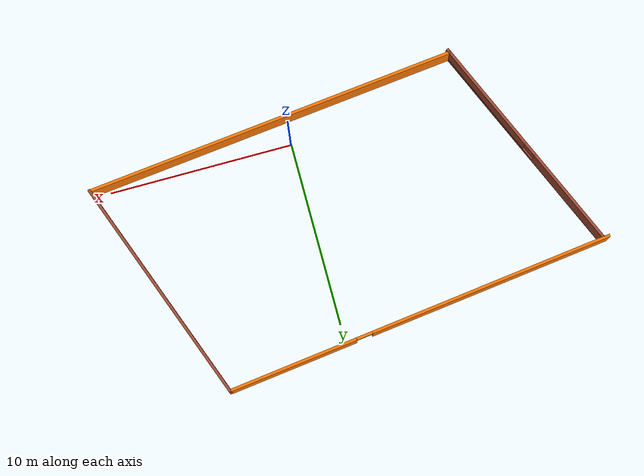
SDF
<?xml version='1.0'?>
<sdf version='1.6'>
  <model name='building'>
    <pose frame=''>-1.9317 4.7603 0 0 -0 0</pose>
    <link name='Wall_0'>
      <pose frame=''>-9.99203 -1.31689 0 0 0 -1.14916</pose>
      <visual name='Wall_0_Visual_0'>
        <pose frame=''>-3.64378 0 1.25 0 -0 0</pose>
        <geometry>
          <box>
            <size>5.72388 0.15 2.5</size>
          </box>
        </geometry>
        <material>
          <script>
            <uri>file://media/materials/scripts/gazebo.material</uri>
            <name>Gazebo/Bricks</name>
          </script>
          <ambient>1 1 1 1</ambient>
        </material>
        <meta>
          <layer>0</layer>
        </meta>
      </visual>
      <collision name='Wall_0_Collision_0'>
        <geometry>
          <box>
            <size>5.72388 0.15 2.5</size>
          </box>
        </geometry>
        <pose frame=''>-3.64378 0 1.25 0 -0 0</pose>
      </collision>
      <visual name='Wall_0_Visual_1'>
        <pose frame=''>2.86194 0 0.25 0 -0 0</pose>
        <geometry>
          <box>
            <size>7.28755 0.15 0.5</size>
          </box>
        </geometry>
        <material>
          <script>
            <uri>file://media/materials/scripts/gazebo.material</uri>
            <name>Gazebo/Bricks</name>
          </script>
          <ambient>1 1 1 1</ambient>
        </material>
        <meta>
          <layer>0</layer>
        </meta>
      </visual>
      <collision name='Wall_0_Collision_1'>
        <geometry>
          <box>
            <size>7.28755 0.15 0.5</size>
          </box>
        </geometry>
        <pose frame=''>2.86194 0 0.25 0 -0 0</pose>
      </collision>
      <visual name='Wall_0_Visual_2'>
        <pose frame=''>3.26194 0 1.5 0 -0 0</pose>
        <geometry>
          <box>
            <size>6.48755 0.15 2</size>
          </box>
        </geometry>
        <material>
          <script>
            <uri>file://media/materials/scripts/gazebo.material</uri>
            <name>Gazebo/Bricks</name>
          </script>
          <ambient>1 1 1 1</ambient>
        </material>
        <meta>
          <layer>0</layer>
        </meta>
      </visual>
      <collision name='Wall_0_Collision_2'>
        <geometry>
          <box>
            <size>6.48755 0.15 2</size>
          </box>
        </geometry>
        <pose frame=''>3.26194 0 1.5 0 -0 0</pose>
      </collision>
      <visual name='Wall_0_Visual_3'>
        <pose frame=''>-0.381833 0 1.9 0 -0 0</pose>
        <geometry>
          <box>
            <size>0.8 0.15 1.2</size>
          </box>
        </geometry>
        <material>
          <script>
            <uri>file://media/materials/scripts/gazebo.material</uri>
            <name>Gazebo/Bricks</name>
          </script>
          <ambient>1 1 1 1</ambient>
        </material>
        <meta>
          <layer>0</layer>
        </meta>
      </visual>
      <collision name='Wall_0_Collision_3'>
        <geometry>
          <box>
            <size>0.8 0.15 1.2</size>
          </box>
        </geometry>
        <pose frame=''>-0.381833 0 1.9 0 -0 0</pose>
      </collision>
    </link>
    <link name='Wall_1'>
      <collision name='Wall_1_Collision'>
        <geometry>
          <box>
            <size>20.3706 0.15 2.5</size>
          </box>
        </geometry>
        <pose frame=''>0 0 1.25 0 -0 0</pose>
      </collision>
      <visual name='Wall_1_Visual'>
        <pose frame=''>0 0 1.25 0 -0 0</pose>
        <geometry>
          <box>
            <size>20.3706 0.15 2.5</size>
          </box>
        </geometry>
        <material>
          <script>
            <uri>file://media/materials/scripts/gazebo.material</uri>
            <name>Gazebo/Grey</name>
          </script>
          <ambient>0.996078 0.47451 0.0196078 1</ambient>
        </material>
        <meta>
          <layer>0</layer>
        </meta>
      </visual>
      <pose frame=''>2.69396 -5.98411 0 0 -0 0.105378</pose>
    </link>
    <link name='Wall_2'>
      <collision name='Wall_2_Collision'>
        <geometry>
          <box>
            <size>13.0387 0.15 2.5</size>
          </box>
        </geometry>
        <pose frame=''>0 0 1.25 0 -0 0</pose>
      </collision>
      <visual name='Wall_2_Visual'>
        <pose frame=''>0 0 1.25 0 -0 0</pose>
        <geometry>
          <box>
            <size>13.0387 0.15 2.5</size>
          </box>
        </geometry>
        <material>
          <script>
            <uri>file://media/materials/scripts/gazebo.material</uri>
            <name>Gazebo/Bricks</name>
          </script>
          <ambient>1 1 1 1</ambient>
        </material>
        <meta>
          <layer>0</layer>
        </meta>
      </visual>
      <pose frame=''>10.6763 1.13335 0 0 -0 1.92063</pose>
    </link>
    <link name='Wall_3'>
      <pose frame=''>-2.28344 5.86901 0 0 0 -3.01802</pose>
      <visual name='Wall_3_Visual_0'>
        <pose frame=''>-7.20915 0 1.25 0 -0 0</pose>
        <geometry>
          <box>
            <size>7.12305 0.15 2.5</size>
          </box>
        </geometry>
        <material>
          <script>
            <uri>file://media/materials/scripts/gazebo.material</uri>
            <name>Gazebo/Grey</name>
          </script>
          <ambient>0.996078 0.47451 0.0196078 1</ambient>
        </material>
        <meta>
          <layer>0</layer>
        </meta>
      </visual>
      <collision name='Wall_3_Collision_0'>
        <geometry>
          <box>
            <size>7.12305 0.15 2.5</size>
          </box>
        </geometry>
        <pose frame=''>-7.20915 0 1.25 0 -0 0</pose>
      </collision>
      <visual name='Wall_3_Visual_1'>
        <pose frame=''>4.01152 0 1.25 0 -0 0</pose>
        <geometry>
          <box>
            <size>13.5183 0.15 2.5</size>
          </box>
        </geometry>
        <material>
          <script>
            <uri>file://media/materials/scripts/gazebo.material</uri>
            <name>Gazebo/Grey</name>
          </script>
          <ambient>0.996078 0.47451 0.0196078 1</ambient>
        </material>
        <meta>
          <layer>0</layer>
        </meta>
      </visual>
      <collision name='Wall_3_Collision_1'>
        <geometry>
          <box>
            <size>13.5183 0.15 2.5</size>
          </box>
        </geometry>
        <pose frame=''>4.01152 0 1.25 0 -0 0</pose>
      </collision>
      <visual name='Wall_3_Visual_2'>
        <pose frame=''>-3.19763 0 2.25 0 -0 0</pose>
        <geometry>
          <box>
            <size>0.9 0.15 0.5</size>
          </box>
        </geometry>
        <material>
          <script>
            <uri>file://media/materials/scripts/gazebo.material</uri>
            <name>Gazebo/Grey</name>
          </script>
          <ambient>0.996078 0.47451 0.0196078 1</ambient>
        </material>
        <meta>
          <layer>0</layer>
        </meta>
      </visual>
      <collision name='Wall_3_Collision_2'>
        <geometry>
          <box>
            <size>0.9 0.15 0.5</size>
          </box>
        </geometry>
        <pose frame=''>-3.19763 0 2.25 0 -0 0</pose>
      </collision>
    </link>
    <link name='Wall_4'>
      <collision name='Wall_4_Collision'>
        <geometry>
          <box>
            <size>0.15 0.15 2.5</size>
          </box>
        </geometry>
        <pose frame=''>0 0 1.25 0 -0 0</pose>
      </collision>
      <visual name='Wall_4_Visual'>
        <pose frame=''>0 0 1.25 0 -0 0</pose>
        <geometry>
          <box>
            <size>0.15 0.15 2.5</size>
          </box>
        </geometry>
        <material>
          <script>
            <uri>file://media/materials/scripts/gazebo.material</uri>
            <name>Gazebo/Grey</name>
          </script>
          <ambient>1 1 1 1</ambient>
        </material>
        <meta>
          <layer>0</layer>
        </meta>
      </visual>
      <pose frame=''>-12.6238 4.55064 0 0 -0 0</pose>
    </link>
    <link name='Wall_5'>
      <collision name='Wall_5_Collision'>
        <geometry>
          <box>
            <size>0.15 0.15 2.5</size>
          </box>
        </geometry>
        <pose frame=''>0 0 1.25 0 -0 0</pose>
      </collision>
      <visual name='Wall_5_Visual'>
        <pose frame=''>0 0 1.25 0 -0 0</pose>
        <geometry>
          <box>
            <size>0.15 0.15 2.5</size>
          </box>
        </geometry>
        <material>
          <script>
            <uri>file://media/materials/scripts/gazebo.material</uri>
            <name>Gazebo/Grey</name>
          </script>
          <ambient>1 1 1 1</ambient>
        </material>
        <meta>
          <layer>0</layer>
        </meta>
      </visual>
      <pose frame=''>-12.6238 4.55064 0 0 -0 0</pose>
    </link>
    <static>1</static>
  </model>
</sdf>
